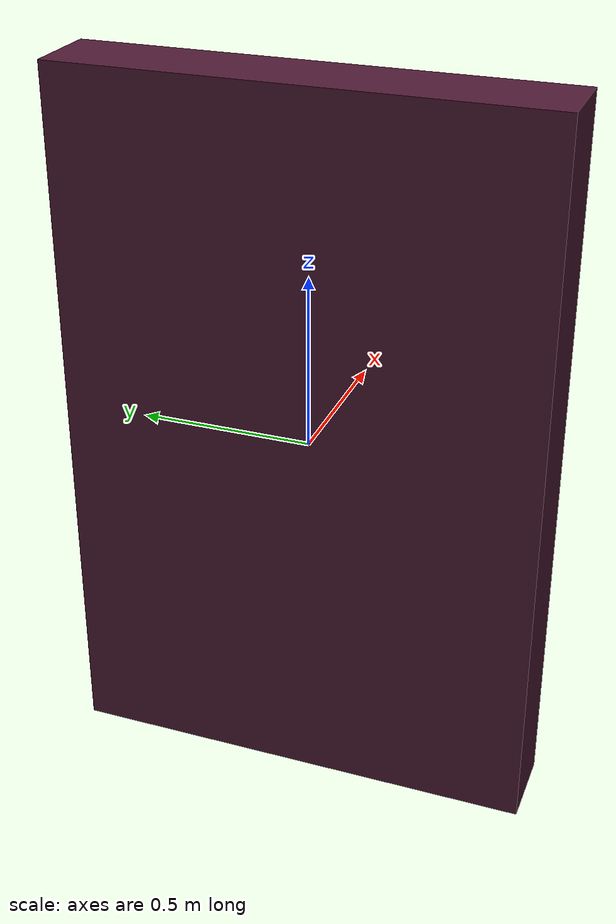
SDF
<?xml version='1.0'?>
<sdf version='1.6'>
  <model name='wall'>
    <link name='wall_link'>
      <inertial>
        <mass>0.670774</mass>
        <inertia>
          <ixx>0.349319</ixx>
          <ixy>0</ixy>
          <ixz>0</ixz>
          <iyy>0.245694</iyy>
          <iyz>0</iyz>
          <izz>0.109692</izz>
        </inertia>
        <pose frame=''>0 0 0 0 -0 0</pose>
      </inertial>
      <pose frame=''>0 0 0 0 -0 0</pose>
      <visual name='visual'>
        <pose frame=''>0 0 0 0 -0 0</pose>
        <geometry>
          <box>
            <size>0.232962 1.38134 2.08354</size>
          </box>
        </geometry>
        <material>
          <ambient>0.3 0.1 0.1 1</ambient>
          <diffuse>0.3 0.1 0.2 1</diffuse>
          <specular>0 0 0 0</specular>
          <emissive>0 0 0 1</emissive>
        </material>
        <transparency>0</transparency>
        <cast_shadows>1</cast_shadows>
      </visual>
      <collision name='collision'>
        <laser_retro>0</laser_retro>
        <max_contacts>10</max_contacts>
        <pose frame=''>0 0 0 0 -0 0</pose>
        <geometry>
          <box>
            <size>0.232962 1.38134 2.08354</size>
          </box>
        </geometry>
        <surface>
          <friction>
            <ode>
              <mu>1</mu>
              <mu2>1</mu2>
              <fdir1>0 0 0</fdir1>
              <slip1>0</slip1>
              <slip2>0</slip2>
            </ode>
            <torsional>
              <coefficient>1</coefficient>
              <patch_radius>0</patch_radius>
              <surface_radius>0</surface_radius>
              <use_patch_radius>1</use_patch_radius>
              <ode>
                <slip>0</slip>
              </ode>
            </torsional>
          </friction>
          <bounce>
            <restitution_coefficient>0</restitution_coefficient>
            <threshold>1e+06</threshold>
          </bounce>
          <contact>
            <collide_without_contact>0</collide_without_contact>
            <collide_without_contact_bitmask>1</collide_without_contact_bitmask>
            <collide_bitmask>1</collide_bitmask>
            <ode>
              <soft_cfm>0</soft_cfm>
              <soft_erp>0.2</soft_erp>
              <kp>1e+13</kp>
              <kd>1</kd>
              <max_vel>0.01</max_vel>
              <min_depth>0</min_depth>
            </ode>
            <bullet>
              <split_impulse>1</split_impulse>
              <split_impulse_penetration_threshold>-0.01</split_impulse_penetration_threshold>
              <soft_cfm>0</soft_cfm>
              <soft_erp>0.2</soft_erp>
              <kp>1e+13</kp>
              <kd>1</kd>
            </bullet>
          </contact>
        </surface>
      </collision>
    </link>
    <static>0</static>
    <allow_auto_disable>1</allow_auto_disable>
  </model>
</sdf>
